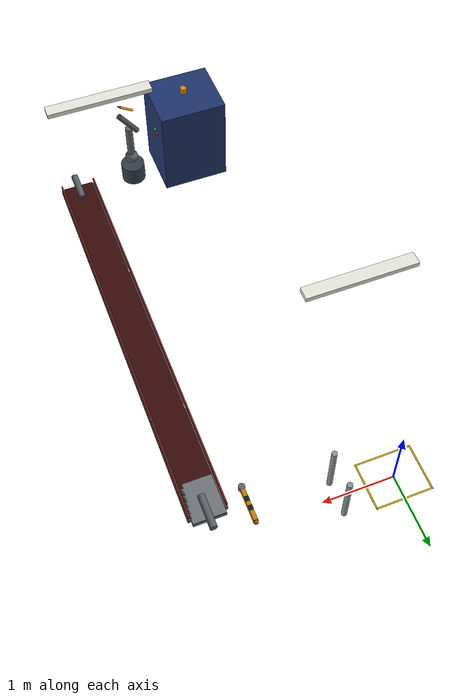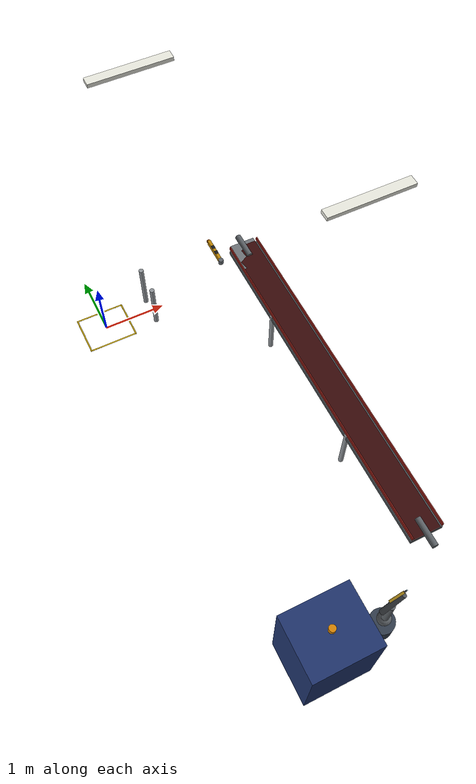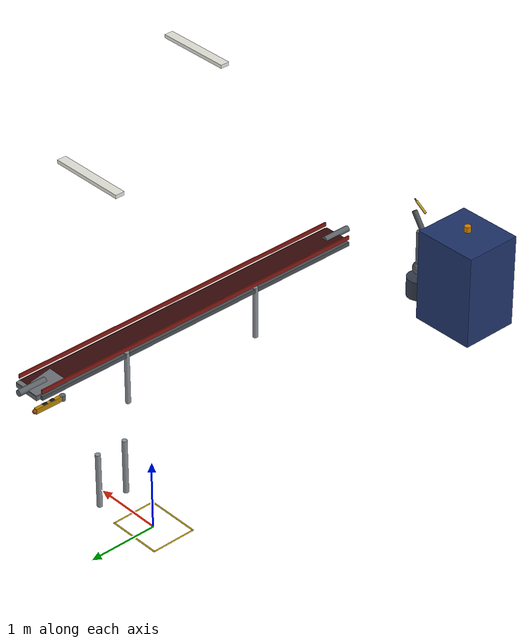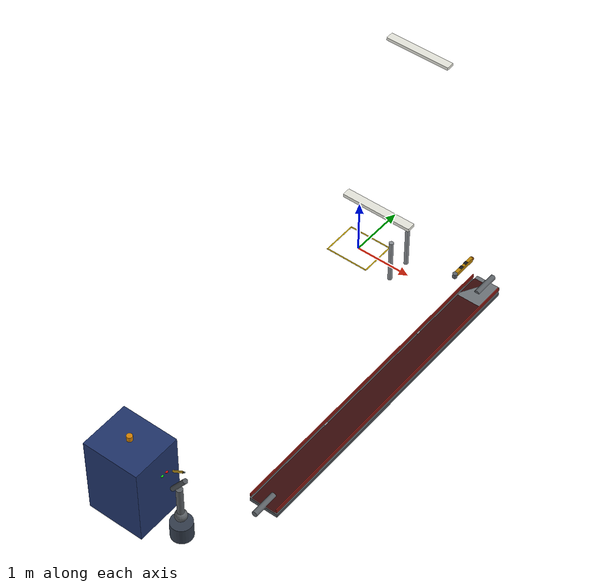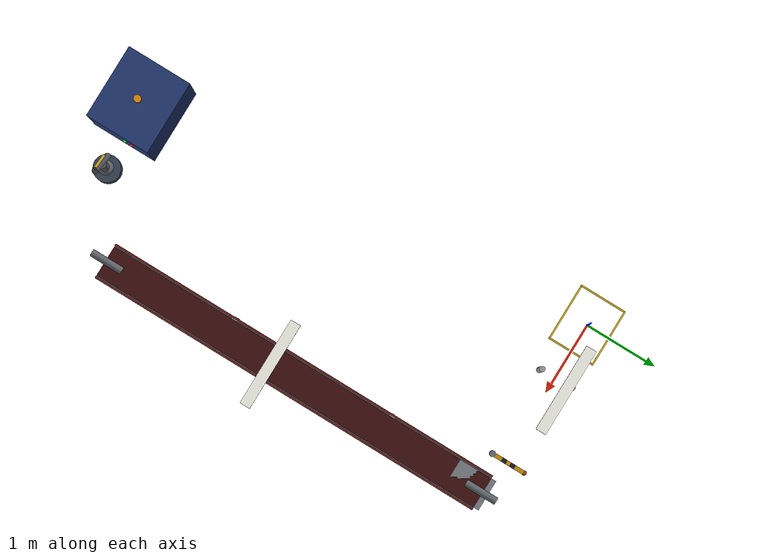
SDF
<sdf version="1.9">
 <world name="weld_inspection_world">
  <model name="fix_3">
   <static>true</static>
   <pose>1   0 4.73 0 0 0</pose>
   <link name="l">
    <visual name="v">
     <geometry><box><size>1.1 0.13 0.05</size></box></geometry>
     <material>
      <ambient>0.88 0.88 0.84 1</ambient>
      <diffuse>0.92 0.92 0.88 1</diffuse>
      <emissive>0.22 0.22 0.20 1</emissive>
     </material>
    </visual>
   </link>
  </model>
  <model name="fix_6">
   <static>true</static>
   <pose>2.5 -3 4.73 0 0 0</pose>
   <link name="l">
    <visual name="v">
     <geometry><box><size>1.1 0.13 0.05</size></box></geometry>
     <material>
      <ambient>0.88 0.88 0.84 1</ambient>
      <diffuse>0.92 0.92 0.88 1</diffuse>
      <emissive>0.22 0.22 0.20 1</emissive>
     </material>
    </visual>
   </link>
  </model>
  <model name="ml_5">
   <static>true</static>
   <pose>0.8   0.22 0.40 0 0 0</pose>
   <link name="l">
    <visual name="v">
     <geometry><cylinder><radius>0.038</radius><length>0.82</length></cylinder></geometry>
     <material>
      <ambient>0.52 0.54 0.56 1</ambient>
      <diffuse>0.56 0.58 0.60 1</diffuse>
      <specular>0.35 0.35 0.35 1</specular>
     </material>
    </visual>
    <collision name="c">
     <geometry><cylinder><radius>0.038</radius><length>0.82</length></cylinder></geometry>
    </collision>
   </link>
  </model>
  <model name="ml_6">
   <static>true</static>
   <pose>0.8  -0.22 0.40 0 0 0</pose>
   <link name="l">
    <visual name="v">
     <geometry><cylinder><radius>0.038</radius><length>0.82</length></cylinder></geometry>
     <material>
      <ambient>0.52 0.54 0.56 1</ambient>
      <diffuse>0.56 0.58 0.60 1</diffuse>
      <specular>0.35 0.35 0.35 1</specular>
     </material>
    </visual>
    <collision name="c">
     <geometry><cylinder><radius>0.038</radius><length>0.82</length></cylinder></geometry>
    </collision>
   </link>
  </model>
  <model name="diverter">
   <pose>2.02 0.02 0.840 0 0 0</pose>
   <link name="base_link">
    <inertial>
     <mass>3.0</mass>
     <inertia><ixx>0.15</ixx><ixy>0</ixy><ixz>0</ixz><iyy>0.15</iyy><iyz>0</iyz><izz>0.15</izz></inertia>
    </inertial>
    <visual name="arm">
     <geometry><box><size>0.052 0.46 0.078</size></box></geometry>
     <material>
      <ambient>0.68 0.46 0.02 1</ambient>
      <diffuse>0.74 0.52 0.02 1</diffuse>
      <specular>0.28 0.22 0.01 1</specular>
     </material>
    </visual>
    <collision name="arm_col"><geometry><box><size>0.052 0.46 0.078</size></box></geometry></collision>
    <visual name="tip">
     <pose>0 0.24 0 0 0 0</pose>
     <geometry><sphere><radius>0.032</radius></sphere></geometry>
     <material><ambient>0.55 0.22 0.02 1</ambient><diffuse>0.62 0.26 0.02 1</diffuse></material>
    </visual>
    <visual name="pivot">
     <pose>0 -0.22 0 0 0 0</pose>
     <geometry><cylinder><radius>0.040</radius><length>0.080</length></cylinder></geometry>
     <material>
      <ambient>0.35 0.37 0.39 1</ambient>
      <diffuse>0.38 0.40 0.42 1</diffuse>
      <specular>0.40 0.40 0.40 1</specular>
     </material>
    </visual>
    <visual name="hs1">
     <pose>0 0.07 0.041 0 0 0</pose>
     <geometry><box><size>0.054 0.065 0.003</size></box></geometry>
     <material><ambient>0.08 0.08 0.08 1</ambient><diffuse>0.09 0.09 0.09 1</diffuse></material>
    </visual>
    <visual name="hs2">
     <pose>0 -0.05 0.041 0 0 0</pose>
     <geometry><box><size>0.054 0.065 0.003</size></box></geometry>
     <material><ambient>0.08 0.08 0.08 1</ambient><diffuse>0.09 0.09 0.09 1</diffuse></material>
    </visual>
   </link>
   <joint name="diverter_joint" type="revolute">
    <parent>world</parent>
    <child>base_link</child>
    <axis>
     <xyz>0 0 1</xyz>
     <limit><lower>-1.57</lower><upper>0.0</upper><effort>1000000</effort><velocity>3.0</velocity></limit>
     <dynamics><damping>20.0</damping></dynamics>
    </axis>
   </joint>
   <plugin filename="gz-sim-joint-controller-system" name="gz::sim::systems::JointController">
    <joint_name>diverter_joint</joint_name>
    <topic>/diverter/cmd</topic>
    <use_force_commands>false</use_force_commands>
    <p_gain>50</p_gain>
   </plugin>
  </model>
  <model name="junction">
   <static>true</static>
   <pose>2.5 -0.24 0.820 0 0 0</pose>
   <link name="plate">
    <visual name="v">
     <geometry><box><size>0.42 0.52 0.012</size></box></geometry>
     <material>
      <ambient>0.40 0.42 0.44 1</ambient>
      <diffuse>0.44 0.46 0.48 1</diffuse>
      <specular>0.32 0.32 0.32 1</specular>
     </material>
    </visual>
    <collision name="c">
     <geometry><box><size>0.42 0.52 0.012</size></box></geometry>
     <surface><friction><ode><mu>0.7</mu><mu2>0.7</mu2></ode></friction></surface>
    </collision>
   </link>
   <link name="support">
    <pose>0 0 -0.04 0 0 0</pose>
    <visual name="v">
     <geometry><box><size>0.42 0.52 0.068</size></box></geometry>
     <material>
      <ambient>0.34 0.36 0.38 1</ambient>
      <diffuse>0.38 0.40 0.42 1</diffuse>
      <specular>0.22 0.22 0.22 1</specular>
     </material>
    </visual>
    <collision name="c"><geometry><box><size>0.42 0.52 0.068</size></box></geometry></collision>
   </link>
  </model>
  <model name="rb_l2">
   <static>true</static>
   <pose>2.28 -1.5 0.40 0 0 0</pose>
   <link name="l">
    <visual name="v">
     <geometry><cylinder><radius>0.038</radius><length>0.82</length></cylinder></geometry>
     <material>
      <ambient>0.52 0.54 0.56 1</ambient>
      <diffuse>0.56 0.58 0.60 1</diffuse>
      <specular>0.35 0.35 0.35 1</specular>
     </material>
    </visual>
    <collision name="c">
     <geometry><cylinder><radius>0.038</radius><length>0.82</length></cylinder></geometry>
    </collision>
   </link>
  </model>
  <model name="rb_l4">
   <static>true</static>
   <pose>2.28 -3.8 0.40 0 0 0</pose>
   <link name="l">
    <visual name="v">
     <geometry><cylinder><radius>0.038</radius><length>0.82</length></cylinder></geometry>
     <material>
      <ambient>0.52 0.54 0.56 1</ambient>
      <diffuse>0.56 0.58 0.60 1</diffuse>
      <specular>0.35 0.35 0.35 1</specular>
     </material>
    </visual>
    <collision name="c">
     <geometry><cylinder><radius>0.038</radius><length>0.82</length></cylinder></geometry>
    </collision>
   </link>
  </model>
  <model name="reject_belt">
   <static>true</static>
   <pose>2.5 -2.8 0 0 0 0</pose>
   <link name="chassis">
    <pose>0 0 0.768 0 0 0</pose>
    <visual name="v">
     <geometry><box><size>0.50 5.5 0.062</size></box></geometry>
     <material>
      <ambient>0.28 0.30 0.32 1</ambient>
      <diffuse>0.30 0.32 0.34 1</diffuse>
      <specular>0.22 0.22 0.22 1</specular>
     </material>
    </visual>
    <collision name="c"><geometry><box><size>0.50 5.5 0.062</size></box></geometry></collision>
   </link>
   <link name="belt">
    <pose>0 0 0.820 0 0 0</pose>
    <visual name="v">
     <geometry><box><size>0.42 5.5 0.012</size></box></geometry>
     <material>
      <ambient>0.18 0.03 0.03 1</ambient>
      <diffuse>0.22 0.04 0.04 1</diffuse>
      <specular>0.06 0.03 0.03 1</specular>
     </material>
    </visual>
    <collision name="c">
     <geometry><box><size>0.42 5.5 0.012</size></box></geometry>
     <surface><friction><ode><mu>1.2</mu><mu2>1.2</mu2></ode></friction></surface>
    </collision>
    <inertial><mass>18</mass></inertial>
   </link>
   <link name="rl">
    <pose>0.236 0 0.870 0 0 0</pose>
    <visual name="v">
     <geometry><box><size>0.018 5.5 0.062</size></box></geometry>
     <material>
      <ambient>0.48 0.08 0.06 1</ambient>
      <diffuse>0.54 0.10 0.07 1</diffuse>
      <specular>0.14 0.05 0.05 1</specular>
     </material>
    </visual>
    <collision name="c"><geometry><box><size>0.018 5.5 0.062</size></box></geometry></collision>
   </link>
   <link name="rr">
    <pose>-0.236 0 0.870 0 0 0</pose>
    <visual name="v">
     <geometry><box><size>0.018 5.5 0.062</size></box></geometry>
     <material>
      <ambient>0.48 0.08 0.06 1</ambient>
      <diffuse>0.54 0.10 0.07 1</diffuse>
      <specular>0.14 0.05 0.05 1</specular>
     </material>
    </visual>
    <collision name="c"><geometry><box><size>0.018 5.5 0.062</size></box></geometry></collision>
   </link>
   <link name="ro_t">
    <pose>0 2.73 0.820 1.5708 0 0</pose>
    <visual name="v">
     <geometry><cylinder><radius>0.048</radius><length>0.44</length></cylinder></geometry>
     <material>
      <ambient>0.32 0.34 0.36 1</ambient>
      <diffuse>0.36 0.38 0.40 1</diffuse>
      <specular>0.42 0.42 0.42 1</specular>
     </material>
    </visual>
    <collision name="c">
     <geometry><cylinder><radius>0.048</radius><length>0.44</length></cylinder></geometry>
    </collision>
   </link>
   <link name="ro_b">
    <pose>0 -2.73 0.820 1.5708 0 0</pose>
    <visual name="v">
     <geometry><cylinder><radius>0.048</radius><length>0.44</length></cylinder></geometry>
     <material>
      <ambient>0.32 0.34 0.36 1</ambient>
      <diffuse>0.36 0.38 0.40 1</diffuse>
      <specular>0.42 0.42 0.42 1</specular>
     </material>
    </visual>
    <collision name="c">
     <geometry><cylinder><radius>0.048</radius><length>0.44</length></cylinder></geometry>
    </collision>
   </link>
   <plugin filename="gz-sim-conveyor-system" name="gz::sim::systems::Conveyor">
    <link>belt</link>
    <speed>0.10</speed>
    <enabled>true</enabled>
    <direction>0 -1 0</direction>
   </plugin>
  </model>
  <model name="robot_arm">
   <pose>1.5 -6.2 0 0 0 0</pose>
   <link name="base">
    <pose>0 0 0.15 0 0 0</pose>
    <inertial>
     <mass>50</mass>
     <inertia><ixx>1</ixx><ixy>0</ixy><ixz>0</ixz><iyy>1</iyy><iyz>0</iyz><izz>1</izz></inertia>
    </inertial>
    <visual name="v">
     <geometry><cylinder><radius>0.18</radius><length>0.30</length></cylinder></geometry>
     <material>
      <ambient>0.18 0.22 0.28 1</ambient>
      <diffuse>0.20 0.24 0.30 1</diffuse>
      <specular>0.30 0.30 0.30 1</specular>
     </material>
    </visual>
    <collision name="c">
     <geometry><cylinder><radius>0.18</radius><length>0.30</length></cylinder></geometry>
    </collision>
   </link>
   <joint name="waist_joint" type="revolute">
    <parent>base</parent>
    <child>shoulder</child>
    <pose>0 0 0.15 0 0 0</pose>
    <axis>
     <xyz>0 0 1</xyz>
     <limit><lower>-2.0</lower><upper>2.0</upper><effort>500</effort></limit>
     <dynamics><damping>5.0</damping></dynamics>
    </axis>
   </joint>
   <link name="shoulder">
    <pose>0 0 0.45 0 0 0</pose>
    <inertial>
     <mass>10</mass>
     <inertia><ixx>0.5</ixx><ixy>0</ixy><ixz>0</ixz><iyy>0.5</iyy><iyz>0</iyz><izz>0.1</izz></inertia>
    </inertial>
    <visual name="hub">
     <geometry><sphere><radius>0.10</radius></sphere></geometry>
     <material>
      <ambient>0.32 0.34 0.36 1</ambient>
      <diffuse>0.36 0.38 0.40 1</diffuse>
      <specular>0.42 0.42 0.42 1</specular>
     </material>
    </visual>
    <collision name="c"><geometry><sphere><radius>0.10</radius></sphere></geometry></collision>
   </link>
   <joint name="elbow_joint" type="revolute">
    <parent>shoulder</parent>
    <child>upper_arm</child>
    <axis>
     <xyz>0 1 0</xyz>
     <limit><lower>-1.5</lower><upper>0.2</upper><effort>300</effort></limit>
     <dynamics><damping>3.0</damping></dynamics>
    </axis>
   </joint>
   <link name="upper_arm">
    <pose>0 0 0.75 0 0 0</pose>
    <inertial>
     <mass>6</mass>
     <inertia><ixx>0.2</ixx><ixy>0</ixy><ixz>0</ixz><iyy>0.2</iyy><iyz>0</iyz><izz>0.05</izz></inertia>
    </inertial>
    <visual name="v">
     <geometry><cylinder><radius>0.055</radius><length>0.60</length></cylinder></geometry>
     <material>
      <ambient>0.32 0.34 0.36 1</ambient>
      <diffuse>0.36 0.38 0.40 1</diffuse>
      <specular>0.42 0.42 0.42 1</specular>
     </material>
    </visual>
    <collision name="c">
     <geometry><cylinder><radius>0.055</radius><length>0.60</length></cylinder></geometry>
    </collision>
   </link>
   <joint name="wrist_joint" type="revolute">
    <parent>upper_arm</parent>
    <child>forearm</child>
    <pose>0 0 0.30 0 0 0</pose>
    <axis>
     <xyz>0 1 0</xyz>
     <limit><lower>-2.0</lower><upper>0.5</upper><effort>150</effort></limit>
     <dynamics><damping>2.0</damping></dynamics>
    </axis>
   </joint>
   <link name="forearm">
    <pose>0 0 1.15 0 0.6 0</pose>
    <inertial>
     <mass>3</mass>
     <inertia><ixx>0.05</ixx><ixy>0</ixy><ixz>0</ixz><iyy>0.05</iyy><iyz>0</iyz><izz>0.02</izz></inertia>
    </inertial>
    <visual name="v">
     <geometry><cylinder><radius>0.040</radius><length>0.45</length></cylinder></geometry>
     <material>
      <ambient>0.28 0.30 0.32 1</ambient>
      <diffuse>0.30 0.32 0.34 1</diffuse>
      <specular>0.38 0.38 0.38 1</specular>
     </material>
    </visual>
    <collision name="c">
     <geometry><cylinder><radius>0.040</radius><length>0.45</length></cylinder></geometry>
    </collision>
   </link>
   <joint name="tool_joint" type="revolute">
    <parent>forearm</parent>
    <child>torch</child>
    <pose>0 0 0.22 0 0 0</pose>
    <axis>
     <xyz>1 0 0</xyz>
     <limit><lower>-1.57</lower><upper>1.57</upper><effort>50</effort></limit>
     <dynamics><damping>1.0</damping></dynamics>
    </axis>
   </joint>
   <link name="torch">
    <pose>0 0 1.45 0 1.0 0</pose>
    <inertial>
     <mass>0.5</mass>
     <inertia><ixx>0.01</ixx><ixy>0</ixy><ixz>0</ixz><iyy>0.01</iyy><iyz>0</iyz><izz>0.005</izz></inertia>
    </inertial>
    <visual name="body">
     <geometry><cylinder><radius>0.018</radius><length>0.22</length></cylinder></geometry>
     <material>
      <ambient>0.68 0.52 0.10 1</ambient>
      <diffuse>0.76 0.60 0.12 1</diffuse>
      <specular>0.48 0.38 0.10 1</specular>
     </material>
    </visual>
    <visual name="nozzle">
     <pose>0 0 0.12 0 0 0</pose>
     <geometry><cylinder><radius>0.010</radius><length>0.05</length></cylinder></geometry>
     <material>
      <ambient>0.20 0.20 0.22 1</ambient>
      <diffuse>0.22 0.22 0.24 1</diffuse>
      <specular>0.55 0.55 0.55 1</specular>
     </material>
    </visual>
    <visual name="arc">
     <pose>0 0 0.15 0 0 0</pose>
     <geometry><sphere><radius>0.008</radius></sphere></geometry>
     <material>
      <ambient>0.6 0.8 1.0 1</ambient>
      <diffuse>0.7 0.9 1.0 1</diffuse>
      <emissive>0.5 0.7 1.0 1</emissive>
     </material>
    </visual>
    <collision name="c">
     <geometry><cylinder><radius>0.018</radius><length>0.22</length></cylinder></geometry>
    </collision>
   </link>
   <plugin filename="gz-sim-joint-position-controller-system" name="gz::sim::systems::JointPositionController">
    <joint_name>waist_joint</joint_name>
    <topic>/robot_arm/waist_cmd</topic>
    <p_gain>100</p_gain>
    <i_gain>0.1</i_gain>
    <d_gain>10</d_gain>
   </plugin>
   <plugin filename="gz-sim-joint-position-controller-system" name="gz::sim::systems::JointPositionController">
    <joint_name>elbow_joint</joint_name>
    <topic>/robot_arm/elbow_cmd</topic>
    <p_gain>80</p_gain>
    <i_gain>0.1</i_gain>
    <d_gain>8</d_gain>
   </plugin>
   <plugin filename="gz-sim-joint-position-controller-system" name="gz::sim::systems::JointPositionController">
    <joint_name>wrist_joint</joint_name>
    <topic>/robot_arm/wrist_cmd</topic>
    <p_gain>50</p_gain>
    <i_gain>0.1</i_gain>
    <d_gain>5</d_gain>
   </plugin>
  </model>
  <model name="weld_machine">
   <static>true</static>
   <pose>0.6 -6.2 0 0 0 0</pose>
   <link name="body">
    <pose>0 0 0.72 0 0 0</pose>
    <visual name="v">
     <geometry><box><size>1.0 0.88 1.44</size></box></geometry>
     <material>
      <ambient>0.10 0.18 0.38 1</ambient>
      <diffuse>0.12 0.20 0.42 1</diffuse>
      <specular>0.18 0.24 0.40 1</specular>
     </material>
    </visual>
    <collision name="c"><geometry><box><size>1.0 0.88 1.44</size></box></geometry></collision>
   </link>
   <link name="panel">
    <pose>0.47 0 0.82 0 0 0</pose>
    <visual name="v">
     <geometry><box><size>0.034 0.68 0.58</size></box></geometry>
     <material><ambient>0.08 0.10 0.18 1</ambient><diffuse>0.09 0.11 0.20 1</diffuse></material>
    </visual>
   </link>
   <link name="btn_r">
    <pose>0.50  0.18 0.96 0 0 0</pose>
    <visual name="v">
     <geometry><cylinder><radius>0.024</radius><length>0.014</length></cylinder></geometry>
     <material>
      <ambient>0.9 0.05 0.05 1</ambient>
      <diffuse>1.0 0.06 0.06 1</diffuse>
      <emissive>0.40 0 0 1</emissive>
     </material>
    </visual>
   </link>
   <link name="btn_g">
    <pose>0.50 0.08 0.96 0 0 0</pose>
    <visual name="v">
     <geometry><cylinder><radius>0.024</radius><length>0.014</length></cylinder></geometry>
     <material>
      <ambient>0.05 0.9 0.1 1</ambient>
      <diffuse>0.06 1.0 0.1 1</diffuse>
      <emissive>0 0.40 0 1</emissive>
     </material>
    </visual>
   </link>
   <link name="beacon">
    <pose>0 0 1.52 0 0 0</pose>
    <visual name="v">
     <geometry><cylinder><radius>0.048</radius><length>0.088</length></cylinder></geometry>
     <material>
      <ambient>0.78 0.45 0.01 1</ambient>
      <diffuse>0.85 0.52 0.01 1</diffuse>
      <emissive>0.32 0.18 0.01 1</emissive>
     </material>
    </visual>
   </link>
  </model>
  <model name="iz_floor">
   <static>true</static>
   <pose>0 0 0.001 0 0 0</pose>
   <link name="l">
    <visual name="f">
     <pose>0  0.32 0 0 0 0</pose>
     <geometry><box><size>0.80 0.022 0.001</size></box></geometry>
     <material><ambient>0.72 0.58 0.02 1</ambient><diffuse>0.78 0.64 0.02 1</diffuse></material>
    </visual>
    <visual name="b">
     <pose>0 -0.32 0 0 0 0</pose>
     <geometry><box><size>0.80 0.022 0.001</size></box></geometry>
     <material><ambient>0.72 0.58 0.02 1</ambient><diffuse>0.78 0.64 0.02 1</diffuse></material>
    </visual>
    <visual name="ll">
     <pose>0.39 0 0 0 0 0</pose>
     <geometry><box><size>0.022 0.66 0.001</size></box></geometry>
     <material><ambient>0.72 0.58 0.02 1</ambient><diffuse>0.78 0.64 0.02 1</diffuse></material>
    </visual>
    <visual name="rl">
     <pose>-0.39 0 0 0 0 0</pose>
     <geometry><box><size>0.022 0.66 0.001</size></box></geometry>
     <material><ambient>0.72 0.58 0.02 1</ambient><diffuse>0.78 0.64 0.02 1</diffuse></material>
    </visual>
   </link>
  </model>
 </world>
</sdf>
